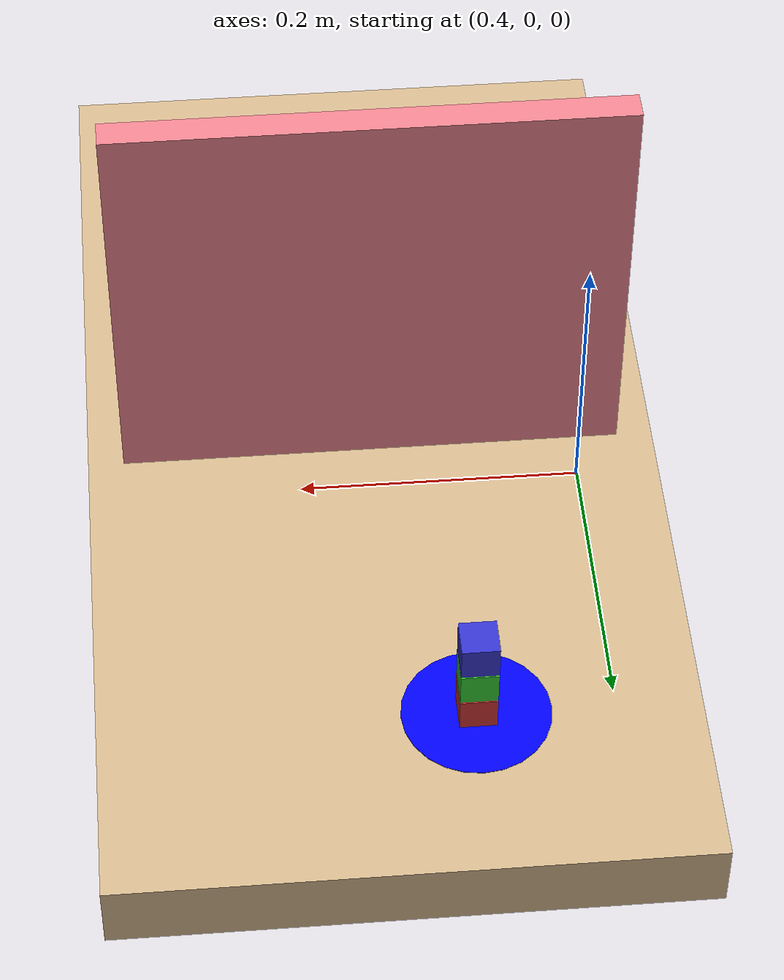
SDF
<sdf version="1.6">
 <world name="pick_and_place_sorting_world">
  <model name="table_source">
   <static>true</static>
   <pose>0.55 0 0.025 0 0 0</pose>
   <link name="table_source_top_link">
    <visual name="visual">
     <geometry><box><size>0.4 0.75 0.05</size></box></geometry>
     <material><diffuse>0.82 0.71 0.55 1.0</diffuse><specular>0.2 0.2 0.2 1.0</specular></material>
    </visual>
    <collision name="collision">
     <geometry><box><size>0.4 0.75 0.05</size></box></geometry>
     <proximity_properties><mu_dynamic>0.3</mu_dynamic><mu_static>0.3</mu_static></proximity_properties>
    </collision>
   </link>
  </model>
  <model name="wall">
   <static>true</static>
   <pose>0.55 0 0.2 0 0 0</pose>
   <link name="wall_top_link">
    <visual name="visual">
     <geometry><box><size>0.35 0.02 0.3</size></box></geometry>
     <material><diffuse>0.92 0.51 0.55 1.0</diffuse><specular>0.2 0.2 0.2 1.0</specular></material>
    </visual>
    <collision name="collision">
     <geometry><box><size>0.35 0.02 0.30</size></box></geometry>
     <proximity_properties><mu_dynamic>0.3</mu_dynamic><mu_static>0.3</mu_static></proximity_properties>
    </collision>
   </link>
  </model>
  <model name="red_cube">
   <pose>0.5 0.25 0.0635 0 0 0</pose>
   <link name="red_link">
    <inertial>
     <mass>0.1</mass>
     <inertia><ixx>5e-5</ixx><iyy>5e-5</iyy><izz>5e-5</izz><ixy>0</ixy><ixz>0</ixz><iyz>0</iyz></inertia>
    </inertial>
    <collision name="collision">
     <geometry><box><size>0.025 0.025 0.025</size></box></geometry>
     <proximity_properties><mu_dynamic>1</mu_dynamic><mu_static>1</mu_static></proximity_properties>
    </collision>
    <visual name="visual">
     <geometry><box><size>0.025 0.025 0.025</size></box></geometry>
     <material><diffuse>0.8 0.2 0.2 1.0</diffuse></material>
    </visual>
   </link>
  </model>
  <model name="green_cube">
   <pose>0.5 0.25 0.0895 0 0 0</pose>
   <link name="green_link">
    <inertial>
     <mass>0.1</mass>
     <inertia><ixx>5e-5</ixx><iyy>5e-5</iyy><izz>5e-5</izz><ixy>0</ixy><ixz>0</ixz><iyz>0</iyz></inertia>
    </inertial>
    <collision name="collision">
     <geometry><box><size>0.025 0.025 0.025</size></box></geometry>
     <proximity_properties><mu_dynamic>1</mu_dynamic><mu_static>1</mu_static></proximity_properties>
    </collision>
    <visual name="visual">
     <geometry><box><size>0.025 0.025 0.025</size></box></geometry>
     <material><diffuse>0.2 0.8 0.2 1.0</diffuse></material>
    </visual>
   </link>
  </model>
  <model name="blue_cube">
   <pose>0.5 0.25 0.1155 0 0 0</pose>
   <link name="blue_link">
    <inertial>
     <mass>0.1</mass>
     <inertia><ixx>5e-5</ixx><iyy>5e-5</iyy><izz>5e-5</izz><ixy>0</ixy><ixz>0</ixz><iyz>0</iyz></inertia>
    </inertial>
    <collision name="collision">
     <geometry><box><size>0.025 0.025 0.025</size></box></geometry>
     <proximity_properties><mu_dynamic>1</mu_dynamic><mu_static>1</mu_static></proximity_properties>
    </collision>
    <visual name="visual">
     <geometry><box><size>0.025 0.025 0.025</size></box></geometry>
     <material><diffuse>0.2 0.2 0.8 1.0</diffuse></material>
    </visual>
   </link>
  </model>
  <model name="cylinder_initial">
   <pose>0.5 0.25 0.05 0 0 0</pose>
   <static>true</static>
   <link name="link_initial">
    <inertial>
     <mass>0.05</mass>
     <inertia><ixx>1.67e-5</ixx><iyy>1.67e-5</iyy><izz>3.33e-5</izz><ixy>0</ixy><ixz>0</ixz><iyz>0</iyz></inertia>
    </inertial>
    <visual name="visual">
     <geometry><cylinder><radius>0.05</radius><length>0.001</length></cylinder></geometry>
     <material><diffuse>0 0 1 1</diffuse></material>
    </visual>
   </link>
  </model>
  <model name="cylinder_target">
   <pose>0.5 -0.25 0.05 0 0 0</pose>
   <static>true</static>
   <link name="link_target">
    <inertial>
     <mass>0.05</mass>
     <inertia><ixx>1.67e-5</ixx><iyy>1.67e-5</iyy><izz>3.33e-5</izz><ixy>0</ixy><ixz>0</ixz><iyz>0</iyz></inertia>
    </inertial>
    <visual name="visual">
     <geometry><cylinder><radius>0.05</radius><length>0.001</length></cylinder></geometry>
     <material><diffuse>0.8 0.2 0.2 1.0</diffuse></material>
    </visual>
   </link>
  </model>
 </world>
</sdf>
